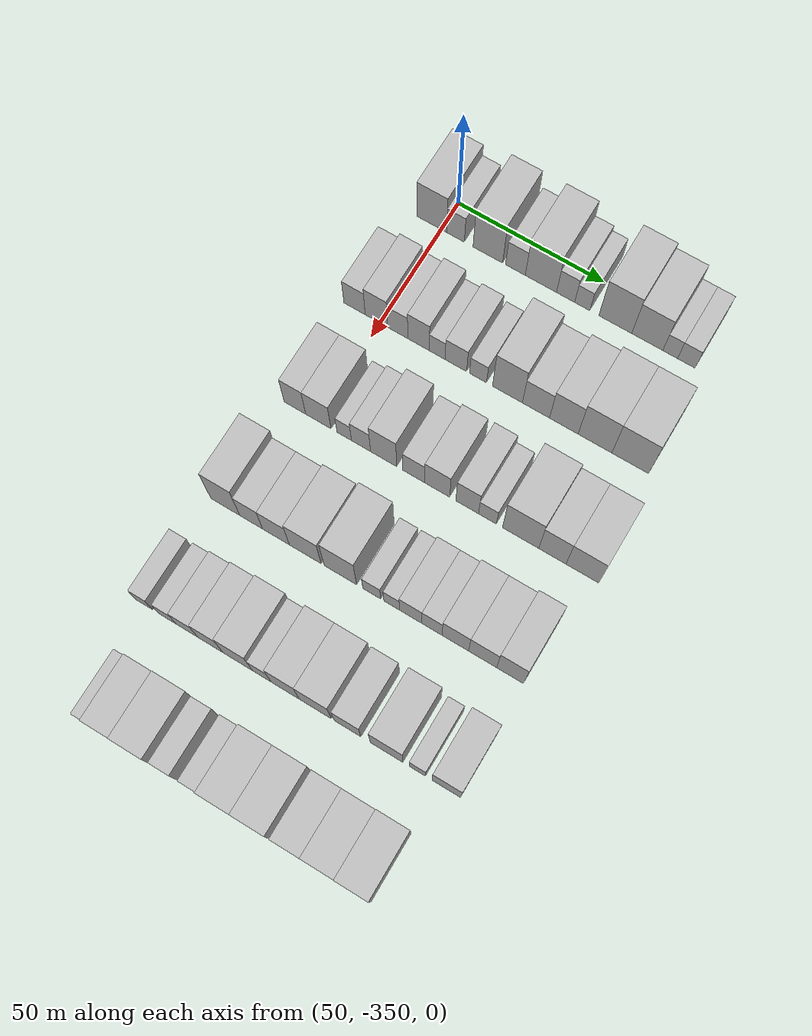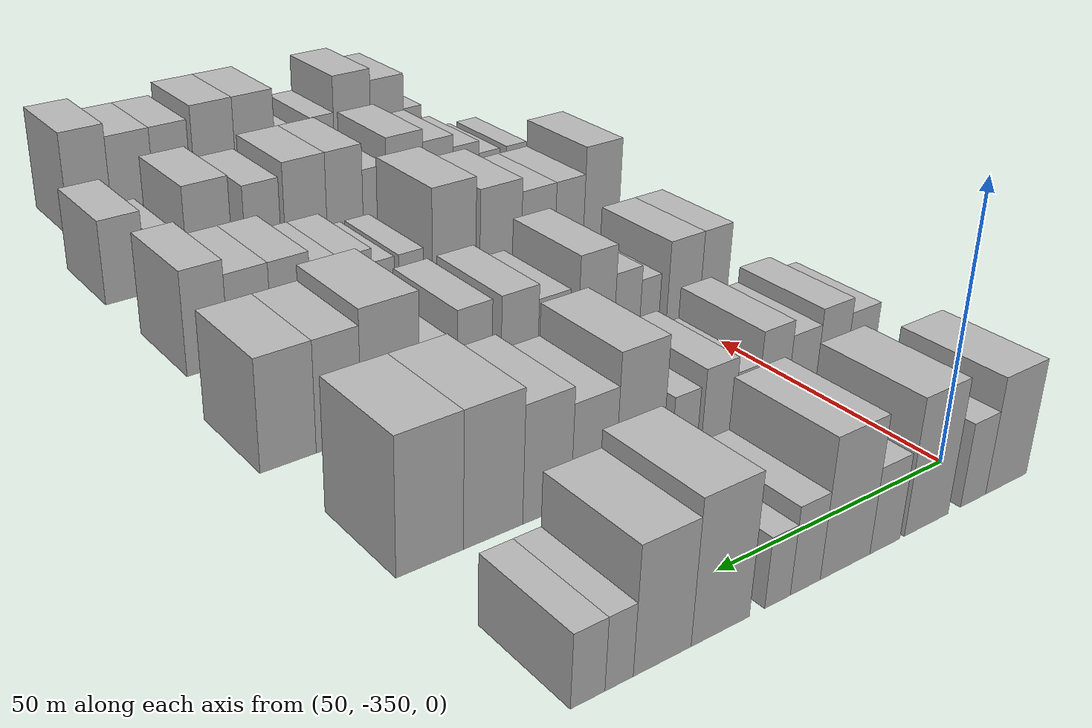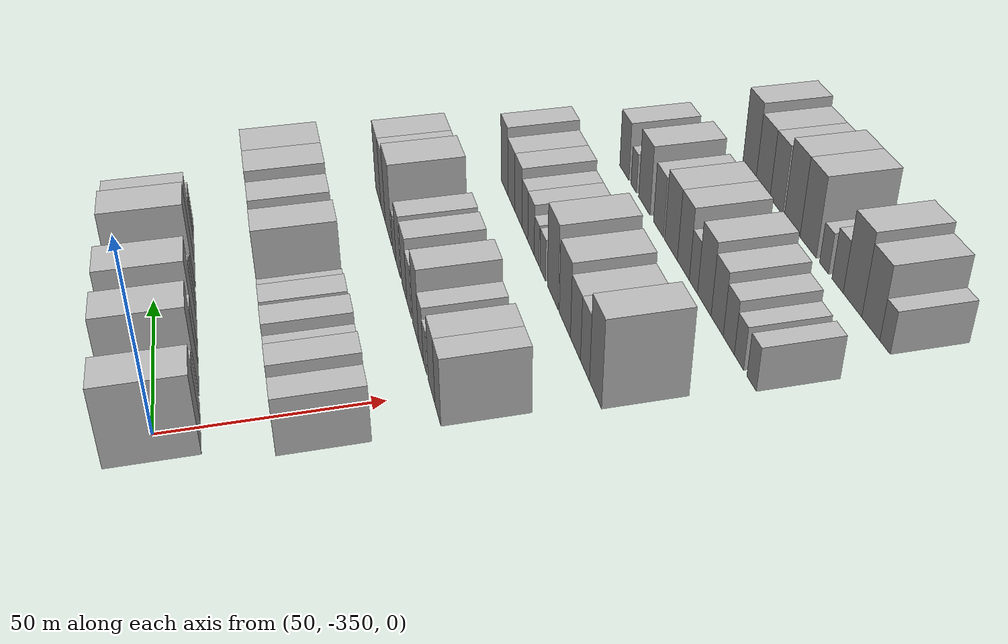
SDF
<sdf version="1.6">
 <world name="default">
  <model name="building_23">
   <static>1</static>
   <pose>50.0000 -353.4307 0 0.000000 0.000000 0.000000</pose>
   <link name="link">
    <pose>0 0 10.50 0 0 0</pose>
    <collision name="collision"><geometry><box><size>20.0000 10.3057 21.0000</size></box></geometry></collision>
    <visual name="visual">
     <cast_shadows>0</cast_shadows>
     <geometry><box><size>20.0000 10.3057 21.0000</size></box></geometry>
     <material>
      <script>
       <uri>model://HANNAS_wall/materials/scripts</uri>
       <uri>model://HANNAS_wall/materials/textures</uri>
       <name>vrc/HANNAS_wall</name>
      </script>
     </material>
    </visual>
   </link>
  </model>
  <model name="building_24">
   <static>1</static>
   <pose>50.0000 -345.2115 0 0.000000 0.000000 0.000000</pose>
   <link name="link">
    <pose>0 0 7.50 0 0 0</pose>
    <collision name="collision"><geometry><box><size>20.0000 6.1326 15.0000</size></box></geometry></collision>
    <visual name="visual">
     <cast_shadows>0</cast_shadows>
     <geometry><box><size>20.0000 6.1326 15.0000</size></box></geometry>
     <material>
      <script>
       <uri>model://HANNAS_wall/materials/scripts</uri>
       <uri>model://HANNAS_wall/materials/textures</uri>
       <name>vrc/HANNAS_wall</name>
      </script>
     </material>
    </visual>
   </link>
  </model>
  <model name="building_25">
   <static>1</static>
   <pose>50.0000 -334.0674 0 0.000000 0.000000 0.000000</pose>
   <link name="link">
    <pose>0 0 12.00 0 0 0</pose>
    <collision name="collision"><geometry><box><size>20.0000 10.1557 24.0000</size></box></geometry></collision>
    <visual name="visual">
     <cast_shadows>0</cast_shadows>
     <geometry><box><size>20.0000 10.1557 24.0000</size></box></geometry>
     <material>
      <script>
       <uri>model://HANNAS_wall/materials/scripts</uri>
       <uri>model://HANNAS_wall/materials/textures</uri>
       <name>vrc/HANNAS_wall</name>
      </script>
     </material>
    </visual>
   </link>
  </model>
  <model name="building_26">
   <static>1</static>
   <pose>50.0000 -324.6339 0 0.000000 0.000000 0.000000</pose>
   <link name="link">
    <pose>0 0 7.50 0 0 0</pose>
    <collision name="collision"><geometry><box><size>20.0000 6.7114 15.0000</size></box></geometry></collision>
    <visual name="visual">
     <cast_shadows>0</cast_shadows>
     <geometry><box><size>20.0000 6.7114 15.0000</size></box></geometry>
     <material>
      <script>
       <uri>model://HANNAS_wall/materials/scripts</uri>
       <uri>model://HANNAS_wall/materials/textures</uri>
       <name>vrc/HANNAS_wall</name>
      </script>
     </material>
    </visual>
   </link>
  </model>
  <model name="building_27">
   <static>1</static>
   <pose>50.0000 -315.9791 0 0.000000 0.000000 0.000000</pose>
   <link name="link">
    <pose>0 0 12.00 0 0 0</pose>
    <collision name="collision"><geometry><box><size>20.0000 10.5981 24.0000</size></box></geometry></collision>
    <visual name="visual">
     <cast_shadows>0</cast_shadows>
     <geometry><box><size>20.0000 10.5981 24.0000</size></box></geometry>
     <material>
      <script>
       <uri>model://HANNAS_wall/materials/scripts</uri>
       <uri>model://HANNAS_wall/materials/textures</uri>
       <name>vrc/HANNAS_wall</name>
      </script>
     </material>
    </visual>
   </link>
  </model>
  <model name="building_28">
   <static>1</static>
   <pose>50.0000 -307.6204 0 0.000000 0.000000 0.000000</pose>
   <link name="link">
    <pose>0 0 7.50 0 0 0</pose>
    <collision name="collision"><geometry><box><size>20.0000 6.1194 15.0000</size></box></geometry></collision>
    <visual name="visual">
     <cast_shadows>0</cast_shadows>
     <geometry><box><size>20.0000 6.1194 15.0000</size></box></geometry>
     <material>
      <script>
       <uri>model://HANNAS_wall/materials/scripts</uri>
       <uri>model://HANNAS_wall/materials/textures</uri>
       <name>vrc/HANNAS_wall</name>
      </script>
     </material>
    </visual>
   </link>
  </model>
  <model name="building_29">
   <static>1</static>
   <pose>50.0000 -302.0120 0 0.000000 0.000000 0.000000</pose>
   <link name="link">
    <pose>0 0 6.00 0 0 0</pose>
    <collision name="collision"><geometry><box><size>20.0000 5.0974 12.0000</size></box></geometry></collision>
    <visual name="visual">
     <cast_shadows>0</cast_shadows>
     <geometry><box><size>20.0000 5.0974 12.0000</size></box></geometry>
     <material>
      <script>
       <uri>model://HANNAS_wall/materials/scripts</uri>
       <uri>model://HANNAS_wall/materials/textures</uri>
       <name>vrc/HANNAS_wall</name>
      </script>
     </material>
    </visual>
   </link>
  </model>
  <model name="building_30">
   <static>1</static>
   <pose>50.0000 -290.9785 0 0.000000 0.000000 0.000000</pose>
   <link name="link">
    <pose>0 0 12.00 0 0 0</pose>
    <collision name="collision"><geometry><box><size>20.0000 10.9697 24.0000</size></box></geometry></collision>
    <visual name="visual">
     <cast_shadows>0</cast_shadows>
     <geometry><box><size>20.0000 10.9697 24.0000</size></box></geometry>
     <material>
      <script>
       <uri>model://HANNAS_wall/materials/scripts</uri>
       <uri>model://HANNAS_wall/materials/textures</uri>
       <name>vrc/HANNAS_wall</name>
      </script>
     </material>
    </visual>
   </link>
  </model>
  <model name="building_31">
   <static>1</static>
   <pose>50.0000 -280.3416 0 0.000000 0.000000 0.000000</pose>
   <link name="link">
    <pose>0 0 10.50 0 0 0</pose>
    <collision name="collision"><geometry><box><size>20.0000 10.3041 21.0000</size></box></geometry></collision>
    <visual name="visual">
     <cast_shadows>0</cast_shadows>
     <geometry><box><size>20.0000 10.3041 21.0000</size></box></geometry>
     <material>
      <script>
       <uri>model://HANNAS_wall/materials/scripts</uri>
       <uri>model://HANNAS_wall/materials/textures</uri>
       <name>vrc/HANNAS_wall</name>
      </script>
     </material>
    </visual>
   </link>
  </model>
  <model name="building_32">
   <static>1</static>
   <pose>50.0000 -272.7746 0 0.000000 0.000000 0.000000</pose>
   <link name="link">
    <pose>0 0 6.00 0 0 0</pose>
    <collision name="collision"><geometry><box><size>20.0000 4.8300 12.0000</size></box></geometry></collision>
    <visual name="visual">
     <cast_shadows>0</cast_shadows>
     <geometry><box><size>20.0000 4.8300 12.0000</size></box></geometry>
     <material>
      <script>
       <uri>model://HANNAS_wall/materials/scripts</uri>
       <uri>model://HANNAS_wall/materials/textures</uri>
       <name>vrc/HANNAS_wall</name>
      </script>
     </material>
    </visual>
   </link>
  </model>
  <model name="building_33">
   <static>1</static>
   <pose>50.0000 -267.4873 0 0.000000 0.000000 0.000000</pose>
   <link name="link">
    <pose>0 0 6.00 0 0 0</pose>
    <collision name="collision"><geometry><box><size>20.0000 5.7445 12.0000</size></box></geometry></collision>
    <visual name="visual">
     <cast_shadows>0</cast_shadows>
     <geometry><box><size>20.0000 5.7445 12.0000</size></box></geometry>
     <material>
      <script>
       <uri>model://HANNAS_wall/materials/scripts</uri>
       <uri>model://HANNAS_wall/materials/textures</uri>
       <name>vrc/HANNAS_wall</name>
      </script>
     </material>
    </visual>
   </link>
  </model>
  <model name="building_149">
   <static>1</static>
   <pose>85.0000 -358.8737 0 0.000000 0.000000 0.000000</pose>
   <link name="link">
    <pose>0 0 7.50 0 0 0</pose>
    <collision name="collision"><geometry><box><size>20.0000 7.3282 15.0000</size></box></geometry></collision>
    <visual name="visual">
     <cast_shadows>0</cast_shadows>
     <geometry><box><size>20.0000 7.3282 15.0000</size></box></geometry>
     <material>
      <script>
       <uri>model://HANNAS_wall/materials/scripts</uri>
       <uri>model://HANNAS_wall/materials/textures</uri>
       <name>vrc/HANNAS_wall</name>
      </script>
     </material>
    </visual>
   </link>
  </model>
  <model name="building_150">
   <static>1</static>
   <pose>85.0000 -351.4219 0 0.000000 0.000000 0.000000</pose>
   <link name="link">
    <pose>0 0 9.00 0 0 0</pose>
    <collision name="collision"><geometry><box><size>20.0000 7.5754 18.0000</size></box></geometry></collision>
    <visual name="visual">
     <cast_shadows>0</cast_shadows>
     <geometry><box><size>20.0000 7.5754 18.0000</size></box></geometry>
     <material>
      <script>
       <uri>model://HANNAS_wall/materials/scripts</uri>
       <uri>model://HANNAS_wall/materials/textures</uri>
       <name>vrc/HANNAS_wall</name>
      </script>
     </material>
    </visual>
   </link>
  </model>
  <model name="building_151">
   <static>1</static>
   <pose>85.0000 -344.1477 0 0.000000 0.000000 0.000000</pose>
   <link name="link">
    <pose>0 0 7.50 0 0 0</pose>
    <collision name="collision"><geometry><box><size>20.0000 6.9729 15.0000</size></box></geometry></collision>
    <visual name="visual">
     <cast_shadows>0</cast_shadows>
     <geometry><box><size>20.0000 6.9729 15.0000</size></box></geometry>
     <material>
      <script>
       <uri>model://HANNAS_wall/materials/scripts</uri>
       <uri>model://HANNAS_wall/materials/textures</uri>
       <name>vrc/HANNAS_wall</name>
      </script>
     </material>
    </visual>
   </link>
  </model>
  <model name="building_152">
   <static>1</static>
   <pose>85.0000 -337.0234 0 0.000000 0.000000 0.000000</pose>
   <link name="link">
    <pose>0 0 9.00 0 0 0</pose>
    <collision name="collision"><geometry><box><size>20.0000 7.2757 18.0000</size></box></geometry></collision>
    <visual name="visual">
     <cast_shadows>0</cast_shadows>
     <geometry><box><size>20.0000 7.2757 18.0000</size></box></geometry>
     <material>
      <script>
       <uri>model://HANNAS_wall/materials/scripts</uri>
       <uri>model://HANNAS_wall/materials/textures</uri>
       <name>vrc/HANNAS_wall</name>
      </script>
     </material>
    </visual>
   </link>
  </model>
  <model name="building_153">
   <static>1</static>
   <pose>85.0000 -330.7201 0 0.000000 0.000000 0.000000</pose>
   <link name="link">
    <pose>0 0 6.00 0 0 0</pose>
    <collision name="collision"><geometry><box><size>20.0000 5.3311 12.0000</size></box></geometry></collision>
    <visual name="visual">
     <cast_shadows>0</cast_shadows>
     <geometry><box><size>20.0000 5.3311 12.0000</size></box></geometry>
     <material>
      <script>
       <uri>model://HANNAS_wall/materials/scripts</uri>
       <uri>model://HANNAS_wall/materials/textures</uri>
       <name>vrc/HANNAS_wall</name>
      </script>
     </material>
    </visual>
   </link>
  </model>
  <model name="building_154">
   <static>1</static>
   <pose>85.0000 -324.4254 0 0.000000 0.000000 0.000000</pose>
   <link name="link">
    <pose>0 0 7.50 0 0 0</pose>
    <collision name="collision"><geometry><box><size>20.0000 7.2582 15.0000</size></box></geometry></collision>
    <visual name="visual">
     <cast_shadows>0</cast_shadows>
     <geometry><box><size>20.0000 7.2582 15.0000</size></box></geometry>
     <material>
      <script>
       <uri>model://HANNAS_wall/materials/scripts</uri>
       <uri>model://HANNAS_wall/materials/textures</uri>
       <name>vrc/HANNAS_wall</name>
      </script>
     </material>
    </visual>
   </link>
  </model>
  <model name="building_155">
   <static>1</static>
   <pose>85.0000 -316.9618 0 0.000000 0.000000 0.000000</pose>
   <link name="link">
    <pose>0 0 6.00 0 0 0</pose>
    <collision name="collision"><geometry><box><size>20.0000 5.6689 12.0000</size></box></geometry></collision>
    <visual name="visual">
     <cast_shadows>0</cast_shadows>
     <geometry><box><size>20.0000 5.6689 12.0000</size></box></geometry>
     <material>
      <script>
       <uri>model://HANNAS_wall/materials/scripts</uri>
       <uri>model://HANNAS_wall/materials/textures</uri>
       <name>vrc/HANNAS_wall</name>
      </script>
     </material>
    </visual>
   </link>
  </model>
  <model name="building_156">
   <static>1</static>
   <pose>85.0000 -307.1525 0 0.000000 0.000000 0.000000</pose>
   <link name="link">
    <pose>0 0 12.00 0 0 0</pose>
    <collision name="collision"><geometry><box><size>20.0000 9.9497 24.0000</size></box></geometry></collision>
    <visual name="visual">
     <cast_shadows>0</cast_shadows>
     <geometry><box><size>20.0000 9.9497 24.0000</size></box></geometry>
     <material>
      <script>
       <uri>model://HANNAS_wall/materials/scripts</uri>
       <uri>model://HANNAS_wall/materials/textures</uri>
       <name>vrc/HANNAS_wall</name>
      </script>
     </material>
    </visual>
   </link>
  </model>
  <model name="building_157">
   <static>1</static>
   <pose>85.0000 -297.6958 0 0.000000 0.000000 0.000000</pose>
   <link name="link">
    <pose>0 0 9.00 0 0 0</pose>
    <collision name="collision"><geometry><box><size>20.0000 8.9637 18.0000</size></box></geometry></collision>
    <visual name="visual">
     <cast_shadows>0</cast_shadows>
     <geometry><box><size>20.0000 8.9637 18.0000</size></box></geometry>
     <material>
      <script>
       <uri>model://HANNAS_wall/materials/scripts</uri>
       <uri>model://HANNAS_wall/materials/textures</uri>
       <name>vrc/HANNAS_wall</name>
      </script>
     </material>
    </visual>
   </link>
  </model>
  <model name="building_158">
   <static>1</static>
   <pose>85.0000 -288.5224 0 0.000000 0.000000 0.000000</pose>
   <link name="link">
    <pose>0 0 10.50 0 0 0</pose>
    <collision name="collision"><geometry><box><size>20.0000 9.3830 21.0000</size></box></geometry></collision>
    <visual name="visual">
     <cast_shadows>0</cast_shadows>
     <geometry><box><size>20.0000 9.3830 21.0000</size></box></geometry>
     <material>
      <script>
       <uri>model://HANNAS_wall/materials/scripts</uri>
       <uri>model://HANNAS_wall/materials/textures</uri>
       <name>vrc/HANNAS_wall</name>
      </script>
     </material>
    </visual>
   </link>
  </model>
  <model name="building_159">
   <static>1</static>
   <pose>85.0000 -278.3214 0 0.000000 0.000000 0.000000</pose>
   <link name="link">
    <pose>0 0 12.00 0 0 0</pose>
    <collision name="collision"><geometry><box><size>20.0000 11.0190 24.0000</size></box></geometry></collision>
    <visual name="visual">
     <cast_shadows>0</cast_shadows>
     <geometry><box><size>20.0000 11.0190 24.0000</size></box></geometry>
     <material>
      <script>
       <uri>model://HANNAS_wall/materials/scripts</uri>
       <uri>model://HANNAS_wall/materials/textures</uri>
       <name>vrc/HANNAS_wall</name>
      </script>
     </material>
    </visual>
   </link>
  </model>
  <model name="building_160">
   <static>1</static>
   <pose>85.0000 -266.8651 0 0.000000 0.000000 0.000000</pose>
   <link name="link">
    <pose>0 0 12.00 0 0 0</pose>
    <collision name="collision"><geometry><box><size>20.0000 11.8937 24.0000</size></box></geometry></collision>
    <visual name="visual">
     <cast_shadows>0</cast_shadows>
     <geometry><box><size>20.0000 11.8937 24.0000</size></box></geometry>
     <material>
      <script>
       <uri>model://HANNAS_wall/materials/scripts</uri>
       <uri>model://HANNAS_wall/materials/textures</uri>
       <name>vrc/HANNAS_wall</name>
      </script>
     </material>
    </visual>
   </link>
  </model>
  <model name="building_278">
   <static>1</static>
   <pose>120.0000 -357.3738 0 0.000000 0.000000 0.000000</pose>
   <link name="link">
    <pose>0 0 9.00 0 0 0</pose>
    <collision name="collision"><geometry><box><size>20.0000 7.3003 18.0000</size></box></geometry></collision>
    <visual name="visual">
     <cast_shadows>0</cast_shadows>
     <geometry><box><size>20.0000 7.3003 18.0000</size></box></geometry>
     <material>
      <script>
       <uri>model://HANNAS_wall/materials/scripts</uri>
       <uri>model://HANNAS_wall/materials/textures</uri>
       <name>vrc/HANNAS_wall</name>
      </script>
     </material>
    </visual>
   </link>
  </model>
  <model name="building_279">
   <static>1</static>
   <pose>120.0000 -349.4325 0 0.000000 0.000000 0.000000</pose>
   <link name="link">
    <pose>0 0 9.00 0 0 0</pose>
    <collision name="collision"><geometry><box><size>20.0000 8.5823 18.0000</size></box></geometry></collision>
    <visual name="visual">
     <cast_shadows>0</cast_shadows>
     <geometry><box><size>20.0000 8.5823 18.0000</size></box></geometry>
     <material>
      <script>
       <uri>model://HANNAS_wall/materials/scripts</uri>
       <uri>model://HANNAS_wall/materials/textures</uri>
       <name>vrc/HANNAS_wall</name>
      </script>
     </material>
    </visual>
   </link>
  </model>
  <model name="building_280">
   <static>1</static>
   <pose>120.0000 -340.7099 0 0.000000 0.000000 0.000000</pose>
   <link name="link">
    <pose>0 0 6.00 0 0 0</pose>
    <collision name="collision"><geometry><box><size>20.0000 4.8628 12.0000</size></box></geometry></collision>
    <visual name="visual">
     <cast_shadows>0</cast_shadows>
     <geometry><box><size>20.0000 4.8628 12.0000</size></box></geometry>
     <material>
      <script>
       <uri>model://HANNAS_wall/materials/scripts</uri>
       <uri>model://HANNAS_wall/materials/textures</uri>
       <name>vrc/HANNAS_wall</name>
      </script>
     </material>
    </visual>
   </link>
  </model>
  <model name="building_281">
   <static>1</static>
   <pose>120.0000 -335.0985 0 0.000000 0.000000 0.000000</pose>
   <link name="link">
    <pose>0 0 7.50 0 0 0</pose>
    <collision name="collision"><geometry><box><size>20.0000 6.3600 15.0000</size></box></geometry></collision>
    <visual name="visual">
     <cast_shadows>0</cast_shadows>
     <geometry><box><size>20.0000 6.3600 15.0000</size></box></geometry>
     <material>
      <script>
       <uri>model://HANNAS_wall/materials/scripts</uri>
       <uri>model://HANNAS_wall/materials/textures</uri>
       <name>vrc/HANNAS_wall</name>
      </script>
     </material>
    </visual>
   </link>
  </model>
  <model name="building_282">
   <static>1</static>
   <pose>120.0000 -327.5617 0 0.000000 0.000000 0.000000</pose>
   <link name="link">
    <pose>0 0 10.50 0 0 0</pose>
    <collision name="collision"><geometry><box><size>20.0000 8.7136 21.0000</size></box></geometry></collision>
    <visual name="visual">
     <cast_shadows>0</cast_shadows>
     <geometry><box><size>20.0000 8.7136 21.0000</size></box></geometry>
     <material>
      <script>
       <uri>model://HANNAS_wall/materials/scripts</uri>
       <uri>model://HANNAS_wall/materials/textures</uri>
       <name>vrc/HANNAS_wall</name>
      </script>
     </material>
    </visual>
   </link>
  </model>
  <model name="building_283">
   <static>1</static>
   <pose>120.0000 -317.5938 0 0.000000 0.000000 0.000000</pose>
   <link name="link">
    <pose>0 0 7.50 0 0 0</pose>
    <collision name="collision"><geometry><box><size>20.0000 7.2222 15.0000</size></box></geometry></collision>
    <visual name="visual">
     <cast_shadows>0</cast_shadows>
     <geometry><box><size>20.0000 7.2222 15.0000</size></box></geometry>
     <material>
      <script>
       <uri>model://HANNAS_wall/materials/scripts</uri>
       <uri>model://HANNAS_wall/materials/textures</uri>
       <name>vrc/HANNAS_wall</name>
      </script>
     </material>
    </visual>
   </link>
  </model>
  <model name="building_284">
   <static>1</static>
   <pose>120.0000 -309.8672 0 0.000000 0.000000 0.000000</pose>
   <link name="link">
    <pose>0 0 9.00 0 0 0</pose>
    <collision name="collision"><geometry><box><size>20.0000 8.2309 18.0000</size></box></geometry></collision>
    <visual name="visual">
     <cast_shadows>0</cast_shadows>
     <geometry><box><size>20.0000 8.2309 18.0000</size></box></geometry>
     <material>
      <script>
       <uri>model://HANNAS_wall/materials/scripts</uri>
       <uri>model://HANNAS_wall/materials/textures</uri>
       <name>vrc/HANNAS_wall</name>
      </script>
     </material>
    </visual>
   </link>
  </model>
  <model name="building_285">
   <static>1</static>
   <pose>120.0000 -300.0399 0 0.000000 0.000000 0.000000</pose>
   <link name="link">
    <pose>0 0 9.00 0 0 0</pose>
    <collision name="collision"><geometry><box><size>20.0000 7.4238 18.0000</size></box></geometry></collision>
    <visual name="visual">
     <cast_shadows>0</cast_shadows>
     <geometry><box><size>20.0000 7.4238 18.0000</size></box></geometry>
     <material>
      <script>
       <uri>model://HANNAS_wall/materials/scripts</uri>
       <uri>model://HANNAS_wall/materials/textures</uri>
       <name>vrc/HANNAS_wall</name>
      </script>
     </material>
    </visual>
   </link>
  </model>
  <model name="building_286">
   <static>1</static>
   <pose>120.0000 -293.4249 0 0.000000 0.000000 0.000000</pose>
   <link name="link">
    <pose>0 0 6.00 0 0 0</pose>
    <collision name="collision"><geometry><box><size>20.0000 5.8062 12.0000</size></box></geometry></collision>
    <visual name="visual">
     <cast_shadows>0</cast_shadows>
     <geometry><box><size>20.0000 5.8062 12.0000</size></box></geometry>
     <material>
      <script>
       <uri>model://HANNAS_wall/materials/scripts</uri>
       <uri>model://HANNAS_wall/materials/textures</uri>
       <name>vrc/HANNAS_wall</name>
      </script>
     </material>
    </visual>
   </link>
  </model>
  <model name="building_287">
   <static>1</static>
   <pose>120.0000 -282.6779 0 0.000000 0.000000 0.000000</pose>
   <link name="link">
    <pose>0 0 12.00 0 0 0</pose>
    <collision name="collision"><geometry><box><size>20.0000 11.6877 24.0000</size></box></geometry></collision>
    <visual name="visual">
     <cast_shadows>0</cast_shadows>
     <geometry><box><size>20.0000 11.6877 24.0000</size></box></geometry>
     <material>
      <script>
       <uri>model://HANNAS_wall/materials/scripts</uri>
       <uri>model://HANNAS_wall/materials/textures</uri>
       <name>vrc/HANNAS_wall</name>
      </script>
     </material>
    </visual>
   </link>
  </model>
  <model name="building_288">
   <static>1</static>
   <pose>120.0000 -272.4672 0 0.000000 0.000000 0.000000</pose>
   <link name="link">
    <pose>0 0 10.50 0 0 0</pose>
    <collision name="collision"><geometry><box><size>20.0000 8.7338 21.0000</size></box></geometry></collision>
    <visual name="visual">
     <cast_shadows>0</cast_shadows>
     <geometry><box><size>20.0000 8.7338 21.0000</size></box></geometry>
     <material>
      <script>
       <uri>model://HANNAS_wall/materials/scripts</uri>
       <uri>model://HANNAS_wall/materials/textures</uri>
       <name>vrc/HANNAS_wall</name>
      </script>
     </material>
    </visual>
   </link>
  </model>
  <model name="building_289">
   <static>1</static>
   <pose>120.0000 -262.8841 0 0.000000 0.000000 0.000000</pose>
   <link name="link">
    <pose>0 0 10.50 0 0 0</pose>
    <collision name="collision"><geometry><box><size>20.0000 10.4325 21.0000</size></box></geometry></collision>
    <visual name="visual">
     <cast_shadows>0</cast_shadows>
     <geometry><box><size>20.0000 10.4325 21.0000</size></box></geometry>
     <material>
      <script>
       <uri>model://HANNAS_wall/materials/scripts</uri>
       <uri>model://HANNAS_wall/materials/textures</uri>
       <name>vrc/HANNAS_wall</name>
      </script>
     </material>
    </visual>
   </link>
  </model>
  <model name="building_417">
   <static>1</static>
   <pose>155.0000 -358.3688 0 0.000000 0.000000 0.000000</pose>
   <link name="link">
    <pose>0 0 12.00 0 0 0</pose>
    <collision name="collision"><geometry><box><size>20.0000 9.7152 24.0000</size></box></geometry></collision>
    <visual name="visual">
     <cast_shadows>0</cast_shadows>
     <geometry><box><size>20.0000 9.7152 24.0000</size></box></geometry>
     <material>
      <script>
       <uri>model://HANNAS_wall/materials/scripts</uri>
       <uri>model://HANNAS_wall/materials/textures</uri>
       <name>vrc/HANNAS_wall</name>
      </script>
     </material>
    </visual>
   </link>
  </model>
  <model name="building_418">
   <static>1</static>
   <pose>155.0000 -349.6907 0 0.000000 0.000000 0.000000</pose>
   <link name="link">
    <pose>0 0 9.00 0 0 0</pose>
    <collision name="collision"><geometry><box><size>20.0000 7.6409 18.0000</size></box></geometry></collision>
    <visual name="visual">
     <cast_shadows>0</cast_shadows>
     <geometry><box><size>20.0000 7.6409 18.0000</size></box></geometry>
     <material>
      <script>
       <uri>model://HANNAS_wall/materials/scripts</uri>
       <uri>model://HANNAS_wall/materials/textures</uri>
       <name>vrc/HANNAS_wall</name>
      </script>
     </material>
    </visual>
   </link>
  </model>
  <model name="building_419">
   <static>1</static>
   <pose>155.0000 -341.4566 0 0.000000 0.000000 0.000000</pose>
   <link name="link">
    <pose>0 0 9.00 0 0 0</pose>
    <collision name="collision"><geometry><box><size>20.0000 8.8274 18.0000</size></box></geometry></collision>
    <visual name="visual">
     <cast_shadows>0</cast_shadows>
     <geometry><box><size>20.0000 8.8274 18.0000</size></box></geometry>
     <material>
      <script>
       <uri>model://HANNAS_wall/materials/scripts</uri>
       <uri>model://HANNAS_wall/materials/textures</uri>
       <name>vrc/HANNAS_wall</name>
      </script>
     </material>
    </visual>
   </link>
  </model>
  <model name="building_420">
   <static>1</static>
   <pose>155.0000 -331.8006 0 0.000000 0.000000 0.000000</pose>
   <link name="link">
    <pose>0 0 10.50 0 0 0</pose>
    <collision name="collision"><geometry><box><size>20.0000 10.4845 21.0000</size></box></geometry></collision>
    <visual name="visual">
     <cast_shadows>0</cast_shadows>
     <geometry><box><size>20.0000 10.4845 21.0000</size></box></geometry>
     <material>
      <script>
       <uri>model://HANNAS_wall/materials/scripts</uri>
       <uri>model://HANNAS_wall/materials/textures</uri>
       <name>vrc/HANNAS_wall</name>
      </script>
     </material>
    </visual>
   </link>
  </model>
  <model name="building_421">
   <static>1</static>
   <pose>155.0000 -320.2567 0 0.000000 0.000000 0.000000</pose>
   <link name="link">
    <pose>0 0 12.00 0 0 0</pose>
    <collision name="collision"><geometry><box><size>20.0000 10.6034 24.0000</size></box></geometry></collision>
    <visual name="visual">
     <cast_shadows>0</cast_shadows>
     <geometry><box><size>20.0000 10.6034 24.0000</size></box></geometry>
     <material>
      <script>
       <uri>model://HANNAS_wall/materials/scripts</uri>
       <uri>model://HANNAS_wall/materials/textures</uri>
       <name>vrc/HANNAS_wall</name>
      </script>
     </material>
    </visual>
   </link>
  </model>
  <model name="building_422">
   <static>1</static>
   <pose>155.0000 -310.0462 0 0.000000 0.000000 0.000000</pose>
   <link name="link">
    <pose>0 0 6.00 0 0 0</pose>
    <collision name="collision"><geometry><box><size>20.0000 5.8176 12.0000</size></box></geometry></collision>
    <visual name="visual">
     <cast_shadows>0</cast_shadows>
     <geometry><box><size>20.0000 5.8176 12.0000</size></box></geometry>
     <material>
      <script>
       <uri>model://HANNAS_wall/materials/scripts</uri>
       <uri>model://HANNAS_wall/materials/textures</uri>
       <name>vrc/HANNAS_wall</name>
      </script>
     </material>
    </visual>
   </link>
  </model>
  <model name="building_423">
   <static>1</static>
   <pose>155.0000 -303.6141 0 0.000000 0.000000 0.000000</pose>
   <link name="link">
    <pose>0 0 6.00 0 0 0</pose>
    <collision name="collision"><geometry><box><size>20.0000 5.0467 12.0000</size></box></geometry></collision>
    <visual name="visual">
     <cast_shadows>0</cast_shadows>
     <geometry><box><size>20.0000 5.0467 12.0000</size></box></geometry>
     <material>
      <script>
       <uri>model://HANNAS_wall/materials/scripts</uri>
       <uri>model://HANNAS_wall/materials/textures</uri>
       <name>vrc/HANNAS_wall</name>
      </script>
     </material>
    </visual>
   </link>
  </model>
  <model name="building_424">
   <static>1</static>
   <pose>155.0000 -297.5106 0 0.000000 0.000000 0.000000</pose>
   <link name="link">
    <pose>0 0 7.50 0 0 0</pose>
    <collision name="collision"><geometry><box><size>20.0000 7.1603 15.0000</size></box></geometry></collision>
    <visual name="visual">
     <cast_shadows>0</cast_shadows>
     <geometry><box><size>20.0000 7.1603 15.0000</size></box></geometry>
     <material>
      <script>
       <uri>model://HANNAS_wall/materials/scripts</uri>
       <uri>model://HANNAS_wall/materials/textures</uri>
       <name>vrc/HANNAS_wall</name>
      </script>
     </material>
    </visual>
   </link>
  </model>
  <model name="building_425">
   <static>1</static>
   <pose>155.0000 -290.7198 0 0.000000 0.000000 0.000000</pose>
   <link name="link">
    <pose>0 0 7.50 0 0 0</pose>
    <collision name="collision"><geometry><box><size>20.0000 6.4213 15.0000</size></box></geometry></collision>
    <visual name="visual">
     <cast_shadows>0</cast_shadows>
     <geometry><box><size>20.0000 6.4213 15.0000</size></box></geometry>
     <material>
      <script>
       <uri>model://HANNAS_wall/materials/scripts</uri>
       <uri>model://HANNAS_wall/materials/textures</uri>
       <name>vrc/HANNAS_wall</name>
      </script>
     </material>
    </visual>
   </link>
  </model>
  <model name="building_426">
   <static>1</static>
   <pose>155.0000 -283.2641 0 0.000000 0.000000 0.000000</pose>
   <link name="link">
    <pose>0 0 9.00 0 0 0</pose>
    <collision name="collision"><geometry><box><size>20.0000 8.4900 18.0000</size></box></geometry></collision>
    <visual name="visual">
     <cast_shadows>0</cast_shadows>
     <geometry><box><size>20.0000 8.4900 18.0000</size></box></geometry>
     <material>
      <script>
       <uri>model://HANNAS_wall/materials/scripts</uri>
       <uri>model://HANNAS_wall/materials/textures</uri>
       <name>vrc/HANNAS_wall</name>
      </script>
     </material>
    </visual>
   </link>
  </model>
  <model name="building_427">
   <static>1</static>
   <pose>155.0000 -274.5734 0 0.000000 0.000000 0.000000</pose>
   <link name="link">
    <pose>0 0 9.00 0 0 0</pose>
    <collision name="collision"><geometry><box><size>20.0000 8.8914 18.0000</size></box></geometry></collision>
    <visual name="visual">
     <cast_shadows>0</cast_shadows>
     <geometry><box><size>20.0000 8.8914 18.0000</size></box></geometry>
     <material>
      <script>
       <uri>model://HANNAS_wall/materials/scripts</uri>
       <uri>model://HANNAS_wall/materials/textures</uri>
       <name>vrc/HANNAS_wall</name>
      </script>
     </material>
    </visual>
   </link>
  </model>
  <model name="building_428">
   <static>1</static>
   <pose>155.0000 -265.9036 0 0.000000 0.000000 0.000000</pose>
   <link name="link">
    <pose>0 0 10.50 0 0 0</pose>
    <collision name="collision"><geometry><box><size>20.0000 8.4481 21.0000</size></box></geometry></collision>
    <visual name="visual">
     <cast_shadows>0</cast_shadows>
     <geometry><box><size>20.0000 8.4481 21.0000</size></box></geometry>
     <material>
      <script>
       <uri>model://HANNAS_wall/materials/scripts</uri>
       <uri>model://HANNAS_wall/materials/textures</uri>
       <name>vrc/HANNAS_wall</name>
      </script>
     </material>
    </visual>
   </link>
  </model>
  <model name="building_535">
   <static>1</static>
   <pose>190.0000 -362.2921 0 0.000000 0.000000 0.000000</pose>
   <link name="link">
    <pose>0 0 6.00 0 0 0</pose>
    <collision name="collision"><geometry><box><size>20.0000 5.6369 12.0000</size></box></geometry></collision>
    <visual name="visual">
     <cast_shadows>0</cast_shadows>
     <geometry><box><size>20.0000 5.6369 12.0000</size></box></geometry>
     <material>
      <script>
       <uri>model://HANNAS_wall/materials/scripts</uri>
       <uri>model://HANNAS_wall/materials/textures</uri>
       <name>vrc/HANNAS_wall</name>
      </script>
     </material>
    </visual>
   </link>
  </model>
  <model name="building_536">
   <static>1</static>
   <pose>190.0000 -354.5575 0 0.000000 0.000000 0.000000</pose>
   <link name="link">
    <pose>0 0 6.00 0 0 0</pose>
    <collision name="collision"><geometry><box><size>20.0000 5.8322 12.0000</size></box></geometry></collision>
    <visual name="visual">
     <cast_shadows>0</cast_shadows>
     <geometry><box><size>20.0000 5.8322 12.0000</size></box></geometry>
     <material>
      <script>
       <uri>model://HANNAS_wall/materials/scripts</uri>
       <uri>model://HANNAS_wall/materials/textures</uri>
       <name>vrc/HANNAS_wall</name>
      </script>
     </material>
    </visual>
   </link>
  </model>
  <model name="building_537">
   <static>1</static>
   <pose>190.0000 -348.0543 0 0.000000 0.000000 0.000000</pose>
   <link name="link">
    <pose>0 0 7.50 0 0 0</pose>
    <collision name="collision"><geometry><box><size>20.0000 7.1742 15.0000</size></box></geometry></collision>
    <visual name="visual">
     <cast_shadows>0</cast_shadows>
     <geometry><box><size>20.0000 7.1742 15.0000</size></box></geometry>
     <material>
      <script>
       <uri>model://HANNAS_wall/materials/scripts</uri>
       <uri>model://HANNAS_wall/materials/textures</uri>
       <name>vrc/HANNAS_wall</name>
      </script>
     </material>
    </visual>
   </link>
  </model>
  <model name="building_538">
   <static>1</static>
   <pose>190.0000 -340.3791 0 0.000000 0.000000 0.000000</pose>
   <link name="link">
    <pose>0 0 9.00 0 0 0</pose>
    <collision name="collision"><geometry><box><size>20.0000 8.1761 18.0000</size></box></geometry></collision>
    <visual name="visual">
     <cast_shadows>0</cast_shadows>
     <geometry><box><size>20.0000 8.1761 18.0000</size></box></geometry>
     <material>
      <script>
       <uri>model://HANNAS_wall/materials/scripts</uri>
       <uri>model://HANNAS_wall/materials/textures</uri>
       <name>vrc/HANNAS_wall</name>
      </script>
     </material>
    </visual>
   </link>
  </model>
  <model name="building_539">
   <static>1</static>
   <pose>190.0000 -331.5145 0 0.000000 0.000000 0.000000</pose>
   <link name="link">
    <pose>0 0 10.50 0 0 0</pose>
    <collision name="collision"><geometry><box><size>20.0000 9.5531 21.0000</size></box></geometry></collision>
    <visual name="visual">
     <cast_shadows>0</cast_shadows>
     <geometry><box><size>20.0000 9.5531 21.0000</size></box></geometry>
     <material>
      <script>
       <uri>model://HANNAS_wall/materials/scripts</uri>
       <uri>model://HANNAS_wall/materials/textures</uri>
       <name>vrc/HANNAS_wall</name>
      </script>
     </material>
    </visual>
   </link>
  </model>
  <model name="building_540">
   <static>1</static>
   <pose>190.0000 -323.6983 0 0.000000 0.000000 0.000000</pose>
   <link name="link">
    <pose>0 0 7.50 0 0 0</pose>
    <collision name="collision"><geometry><box><size>20.0000 6.0793 15.0000</size></box></geometry></collision>
    <visual name="visual">
     <cast_shadows>0</cast_shadows>
     <geometry><box><size>20.0000 6.0793 15.0000</size></box></geometry>
     <material>
      <script>
       <uri>model://HANNAS_wall/materials/scripts</uri>
       <uri>model://HANNAS_wall/materials/textures</uri>
       <name>vrc/HANNAS_wall</name>
      </script>
     </material>
    </visual>
   </link>
  </model>
  <model name="building_541">
   <static>1</static>
   <pose>190.0000 -316.1218 0 0.000000 0.000000 0.000000</pose>
   <link name="link">
    <pose>0 0 10.50 0 0 0</pose>
    <collision name="collision"><geometry><box><size>20.0000 9.0737 21.0000</size></box></geometry></collision>
    <visual name="visual">
     <cast_shadows>0</cast_shadows>
     <geometry><box><size>20.0000 9.0737 21.0000</size></box></geometry>
     <material>
      <script>
       <uri>model://HANNAS_wall/materials/scripts</uri>
       <uri>model://HANNAS_wall/materials/textures</uri>
       <name>vrc/HANNAS_wall</name>
      </script>
     </material>
    </visual>
   </link>
  </model>
  <model name="building_542">
   <static>1</static>
   <pose>190.0000 -306.4942 0 0.000000 0.000000 0.000000</pose>
   <link name="link">
    <pose>0 0 10.50 0 0 0</pose>
    <collision name="collision"><geometry><box><size>20.0000 10.1815 21.0000</size></box></geometry></collision>
    <visual name="visual">
     <cast_shadows>0</cast_shadows>
     <geometry><box><size>20.0000 10.1815 21.0000</size></box></geometry>
     <material>
      <script>
       <uri>model://HANNAS_wall/materials/scripts</uri>
       <uri>model://HANNAS_wall/materials/textures</uri>
       <name>vrc/HANNAS_wall</name>
      </script>
     </material>
    </visual>
   </link>
  </model>
  <model name="building_543">
   <static>1</static>
   <pose>190.0000 -296.2108 0 0.000000 0.000000 0.000000</pose>
   <link name="link">
    <pose>0 0 9.00 0 0 0</pose>
    <collision name="collision"><geometry><box><size>20.0000 8.3853 18.0000</size></box></geometry></collision>
    <visual name="visual">
     <cast_shadows>0</cast_shadows>
     <geometry><box><size>20.0000 8.3853 18.0000</size></box></geometry>
     <material>
      <script>
       <uri>model://HANNAS_wall/materials/scripts</uri>
       <uri>model://HANNAS_wall/materials/textures</uri>
       <name>vrc/HANNAS_wall</name>
      </script>
     </material>
    </visual>
   </link>
  </model>
  <model name="building_544">
   <static>1</static>
   <pose>190.0000 -283.9272 0 0.000000 0.000000 0.000000</pose>
   <link name="link">
    <pose>0 0 10.50 0 0 0</pose>
    <collision name="collision"><geometry><box><size>20.0000 10.1817 21.0000</size></box></geometry></collision>
    <visual name="visual">
     <cast_shadows>0</cast_shadows>
     <geometry><box><size>20.0000 10.1817 21.0000</size></box></geometry>
     <material>
      <script>
       <uri>model://HANNAS_wall/materials/scripts</uri>
       <uri>model://HANNAS_wall/materials/textures</uri>
       <name>vrc/HANNAS_wall</name>
      </script>
     </material>
    </visual>
   </link>
  </model>
  <model name="building_545">
   <static>1</static>
   <pose>190.0000 -274.3060 0 0.000000 0.000000 0.000000</pose>
   <link name="link">
    <pose>0 0 6.00 0 0 0</pose>
    <collision name="collision"><geometry><box><size>20.0000 5.0609 12.0000</size></box></geometry></collision>
    <visual name="visual">
     <cast_shadows>0</cast_shadows>
     <geometry><box><size>20.0000 5.0609 12.0000</size></box></geometry>
     <material>
      <script>
       <uri>model://HANNAS_wall/materials/scripts</uri>
       <uri>model://HANNAS_wall/materials/textures</uri>
       <name>vrc/HANNAS_wall</name>
      </script>
     </material>
    </visual>
   </link>
  </model>
  <model name="building_546">
   <static>1</static>
   <pose>190.0000 -265.3395 0 0.000000 0.000000 0.000000</pose>
   <link name="link">
    <pose>0 0 9.00 0 0 0</pose>
    <collision name="collision"><geometry><box><size>20.0000 8.8720 18.0000</size></box></geometry></collision>
    <visual name="visual">
     <cast_shadows>0</cast_shadows>
     <geometry><box><size>20.0000 8.8720 18.0000</size></box></geometry>
     <material>
      <script>
       <uri>model://HANNAS_wall/materials/scripts</uri>
       <uri>model://HANNAS_wall/materials/textures</uri>
       <name>vrc/HANNAS_wall</name>
      </script>
     </material>
    </visual>
   </link>
  </model>
  <model name="building_656">
   <static>1</static>
   <pose>225.0000 -356.8100 0 0.000000 0.000000 0.000000</pose>
   <link name="link">
    <pose>0 0 6.00 0 0 0</pose>
    <collision name="collision"><geometry><box><size>20.0000 5.3154 12.0000</size></box></geometry></collision>
    <visual name="visual">
     <cast_shadows>0</cast_shadows>
     <geometry><box><size>20.0000 5.3154 12.0000</size></box></geometry>
     <material>
      <script>
       <uri>model://HANNAS_wall/materials/scripts</uri>
       <uri>model://HANNAS_wall/materials/textures</uri>
       <name>vrc/HANNAS_wall</name>
      </script>
     </material>
    </visual>
   </link>
  </model>
  <model name="building_657">
   <static>1</static>
   <pose>225.0000 -349.4118 0 0.000000 0.000000 0.000000</pose>
   <link name="link">
    <pose>0 0 10.50 0 0 0</pose>
    <collision name="collision"><geometry><box><size>20.0000 9.4811 21.0000</size></box></geometry></collision>
    <visual name="visual">
     <cast_shadows>0</cast_shadows>
     <geometry><box><size>20.0000 9.4811 21.0000</size></box></geometry>
     <material>
      <script>
       <uri>model://HANNAS_wall/materials/scripts</uri>
       <uri>model://HANNAS_wall/materials/textures</uri>
       <name>vrc/HANNAS_wall</name>
      </script>
     </material>
    </visual>
   </link>
  </model>
  <model name="building_658">
   <static>1</static>
   <pose>225.0000 -339.5152 0 0.000000 0.000000 0.000000</pose>
   <link name="link">
    <pose>0 0 12.00 0 0 0</pose>
    <collision name="collision"><geometry><box><size>20.0000 10.3122 24.0000</size></box></geometry></collision>
    <visual name="visual">
     <cast_shadows>0</cast_shadows>
     <geometry><box><size>20.0000 10.3122 24.0000</size></box></geometry>
     <material>
      <script>
       <uri>model://HANNAS_wall/materials/scripts</uri>
       <uri>model://HANNAS_wall/materials/textures</uri>
       <name>vrc/HANNAS_wall</name>
      </script>
     </material>
    </visual>
   </link>
  </model>
  <model name="building_659">
   <static>1</static>
   <pose>225.0000 -331.1207 0 0.000000 0.000000 0.000000</pose>
   <link name="link">
    <pose>0 0 7.50 0 0 0</pose>
    <collision name="collision"><geometry><box><size>20.0000 6.4769 15.0000</size></box></geometry></collision>
    <visual name="visual">
     <cast_shadows>0</cast_shadows>
     <geometry><box><size>20.0000 6.4769 15.0000</size></box></geometry>
     <material>
      <script>
       <uri>model://HANNAS_wall/materials/scripts</uri>
       <uri>model://HANNAS_wall/materials/textures</uri>
       <name>vrc/HANNAS_wall</name>
      </script>
     </material>
    </visual>
   </link>
  </model>
  <model name="building_660">
   <static>1</static>
   <pose>225.0000 -323.1551 0 0.000000 0.000000 0.000000</pose>
   <link name="link">
    <pose>0 0 6.00 0 0 0</pose>
    <collision name="collision"><geometry><box><size>20.0000 5.4543 12.0000</size></box></geometry></collision>
    <visual name="visual">
     <cast_shadows>0</cast_shadows>
     <geometry><box><size>20.0000 5.4543 12.0000</size></box></geometry>
     <material>
      <script>
       <uri>model://HANNAS_wall/materials/scripts</uri>
       <uri>model://HANNAS_wall/materials/textures</uri>
       <name>vrc/HANNAS_wall</name>
      </script>
     </material>
    </visual>
   </link>
  </model>
  <model name="building_661">
   <static>1</static>
   <pose>225.0000 -313.2661 0 0.000000 0.000000 0.000000</pose>
   <link name="link">
    <pose>0 0 12.00 0 0 0</pose>
    <collision name="collision"><geometry><box><size>20.0000 10.3237 24.0000</size></box></geometry></collision>
    <visual name="visual">
     <cast_shadows>0</cast_shadows>
     <geometry><box><size>20.0000 10.3237 24.0000</size></box></geometry>
     <material>
      <script>
       <uri>model://HANNAS_wall/materials/scripts</uri>
       <uri>model://HANNAS_wall/materials/textures</uri>
       <name>vrc/HANNAS_wall</name>
      </script>
     </material>
    </visual>
   </link>
  </model>
  <model name="building_662">
   <static>1</static>
   <pose>225.0000 -302.9015 0 0.000000 0.000000 0.000000</pose>
   <link name="link">
    <pose>0 0 12.00 0 0 0</pose>
    <collision name="collision"><geometry><box><size>20.0000 10.4054 24.0000</size></box></geometry></collision>
    <visual name="visual">
     <cast_shadows>0</cast_shadows>
     <geometry><box><size>20.0000 10.4054 24.0000</size></box></geometry>
     <material>
      <script>
       <uri>model://HANNAS_wall/materials/scripts</uri>
       <uri>model://HANNAS_wall/materials/textures</uri>
       <name>vrc/HANNAS_wall</name>
      </script>
     </material>
    </visual>
   </link>
  </model>
  <model name="building_663">
   <static>1</static>
   <pose>225.0000 -292.1853 0 0.000000 0.000000 0.000000</pose>
   <link name="link">
    <pose>0 0 10.50 0 0 0</pose>
    <collision name="collision"><geometry><box><size>20.0000 9.0270 21.0000</size></box></geometry></collision>
    <visual name="visual">
     <cast_shadows>0</cast_shadows>
     <geometry><box><size>20.0000 9.0270 21.0000</size></box></geometry>
     <material>
      <script>
       <uri>model://HANNAS_wall/materials/scripts</uri>
       <uri>model://HANNAS_wall/materials/textures</uri>
       <name>vrc/HANNAS_wall</name>
      </script>
     </material>
    </visual>
   </link>
  </model>
  <model name="building_664">
   <static>1</static>
   <pose>225.0000 -282.5686 0 0.000000 0.000000 0.000000</pose>
   <link name="link">
    <pose>0 0 10.50 0 0 0</pose>
    <collision name="collision"><geometry><box><size>20.0000 10.2064 21.0000</size></box></geometry></collision>
    <visual name="visual">
     <cast_shadows>0</cast_shadows>
     <geometry><box><size>20.0000 10.2064 21.0000</size></box></geometry>
     <material>
      <script>
       <uri>model://HANNAS_wall/materials/scripts</uri>
       <uri>model://HANNAS_wall/materials/textures</uri>
       <name>vrc/HANNAS_wall</name>
      </script>
     </material>
    </visual>
   </link>
  </model>
  <model name="building_665">
   <static>1</static>
   <pose>225.0000 -272.4021 0 0.000000 0.000000 0.000000</pose>
   <link name="link">
    <pose>0 0 12.00 0 0 0</pose>
    <collision name="collision"><geometry><box><size>20.0000 10.1265 24.0000</size></box></geometry></collision>
    <visual name="visual">
     <cast_shadows>0</cast_shadows>
     <geometry><box><size>20.0000 10.1265 24.0000</size></box></geometry>
     <material>
      <script>
       <uri>model://HANNAS_wall/materials/scripts</uri>
       <uri>model://HANNAS_wall/materials/textures</uri>
       <name>vrc/HANNAS_wall</name>
      </script>
     </material>
    </visual>
   </link>
  </model>
 </world>
</sdf>
